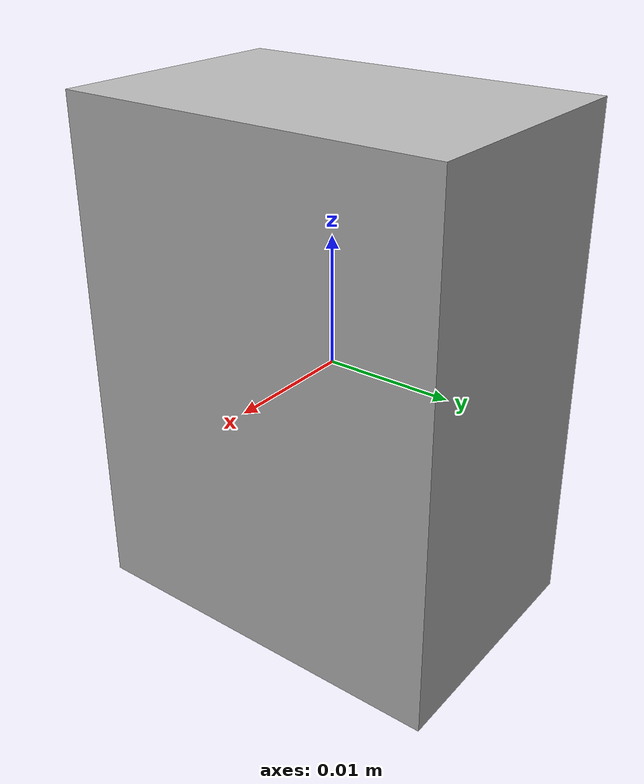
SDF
<?xml version="1.0" ?>
<sdf version="1.5">
	<model name="teraranger">
		<link name="teraranger_link">
			<gravity>0</gravity>
			<kinematic>0</kinematic>
			<visual name="visual">
        <pose>0 0 0 0 1.5708 0</pose>
        <geometry>
          <box>
            <size>.04 .03 .02</size>
          </box>
        </geometry>
      </visual>

			<inertial>
				<mass>0.05</mass>
				<inertia>
					<ixx>1e-05</ixx>
					<ixy>0</ixy>
					<ixz>0</ixz>
					<iyy>1e-05</iyy>
					<iyz>0</iyz>
					<izz>1e-05</izz>
				</inertia>
			</inertial>

			<sensor type="ray" name="sonar">
				<pose>0 0 0 0 0 0</pose>
        <visualize>false</visualize>
        <always_on>1</always_on>
				<ray>
					<scan>
						<horizontal>
              <samples>1</samples>
              <resolution>1.0</resolution>
              <min_angle>-0</min_angle>
              <max_angle>0</max_angle>
            </horizontal>
					</scan>
					<range>
						<min>0.2</min>
						<max>14.0</max>
						<resolution>0.01</resolution>
					</range>
				</ray>

				<plugin name="gazebo_ros_range" filename="libgazebo_ros_range.so">
				  <gaussianNoise>0.001</gaussianNoise>
				  <alwaysOn>true</alwaysOn>
				  <updateRate>50</updateRate>
					<topicName>/mavros/distance_sensor/teraranger</topicName>
					<frameName>/teraranger_link</frameName>
					<fov>0.001</fov>
					<radiation>infrared</radiation> <!-- ultrasound or infrared -->
				</plugin>
			</sensor>
		</link>
	</model>
</sdf>
